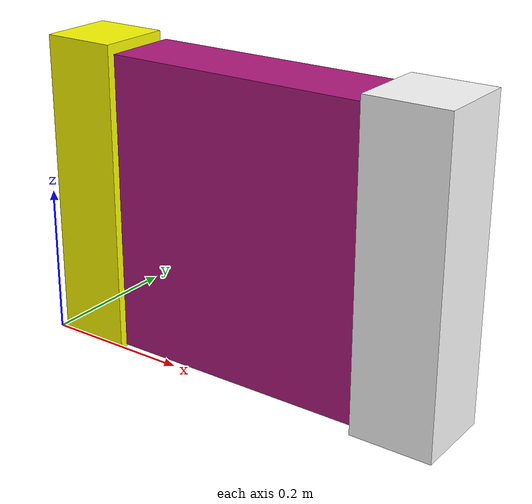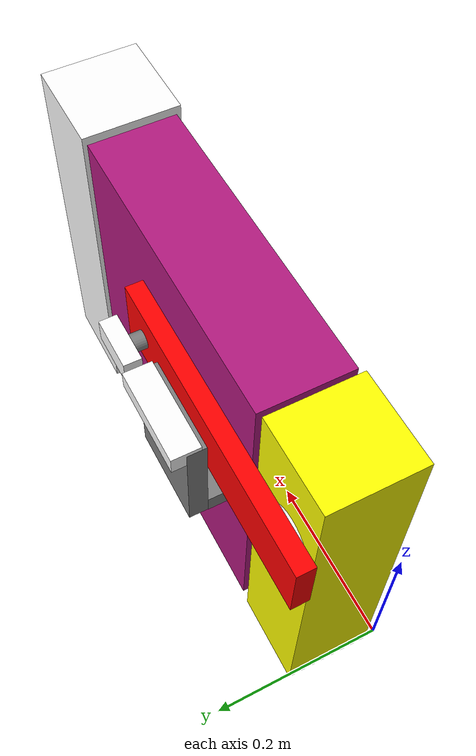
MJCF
<mujoco model="picked_box">
    <worldbody>
        <body name="picked_box" pos="0 0 0" >
            <body name="door" pos="0 0.2 0.2" >
                <geom condim="3" pos="0.32 -0.14 0" friction="1 1 1" size="0.21 0.05 0.2" rgba="0.7 0.1 0.5 1" type="box" ></geom>
                <geom pos="0.52 -0.14 0.0" size="0.055 0.055 0.21" type="box" rgba="1 1 1 1"></geom>
                <geom pos="0.17 -0.07 0.049" size="0.05 0.02 0.01" type="box" rgba="0.5 0.5 0.5 1" ></geom>
                <geom pos="0.17 -0.04 0.1" size="0.05 0.01 0.06"  type="box" rgba="0.5 0.5 0.5 1" ></geom>
                <geom name="handle_box" pos="0.17 -0.03 0.155" size="0.05 0.015 0.01" type="box" rgba="1 1 1 1" friction="0.3 0.3 0.3"></geom>
                <joint armature="0.01" axis="0 0 1" damping="1" frictionloss="0.1" limited="true" name="door_hinge" pos="0.4 -0.14 0" range="-1.57 0.01" type="hinge"></joint>

            </body>

            <body name="frame" pos="-0.5 0.06 0.2" >
                <geom condim="3" pos="0.55 0 0" size="0.05 0.05 0.21" type="box" rgba="1 1 0 1.0"></geom>
            </body>

            <body name="latch" pos="0.14 0.13 0.3">
                <geom pos="-0.1 -0.02 0" quat="1 1 0 0" size="0.03 0.005" type="cylinder" mass="0.001" rgba="1 1 1 1"></geom>
                <geom condim="1" pos="0.02 -0.005 0" size="0.17 0.01 0.0375" type="box" rgba="1 0 0 1.0" mass="0.03"></geom>
                <geom pos="0.15 0.01 0" quat="1 1 0 0" size="0.01 0.02" type="cylinder" mass="0.001"></geom>
                <geom name="picked_box" pos="0.15 0.03 0" size="0.03 0.01 0.014" type="box" mass="0.003" rgba="1 1 1 1" friction="0.3 0.3 0.3"></geom>
                <joint armature="0.01" axis="0 1 0" damping="0.1" frictionloss="0.01" limited="true" name="latch_hinge" pos="-0.1 0.1 0" range="-2 0" type="hinge"></joint>

            </body>

        </body>
        </worldbody>
</mujoco>
